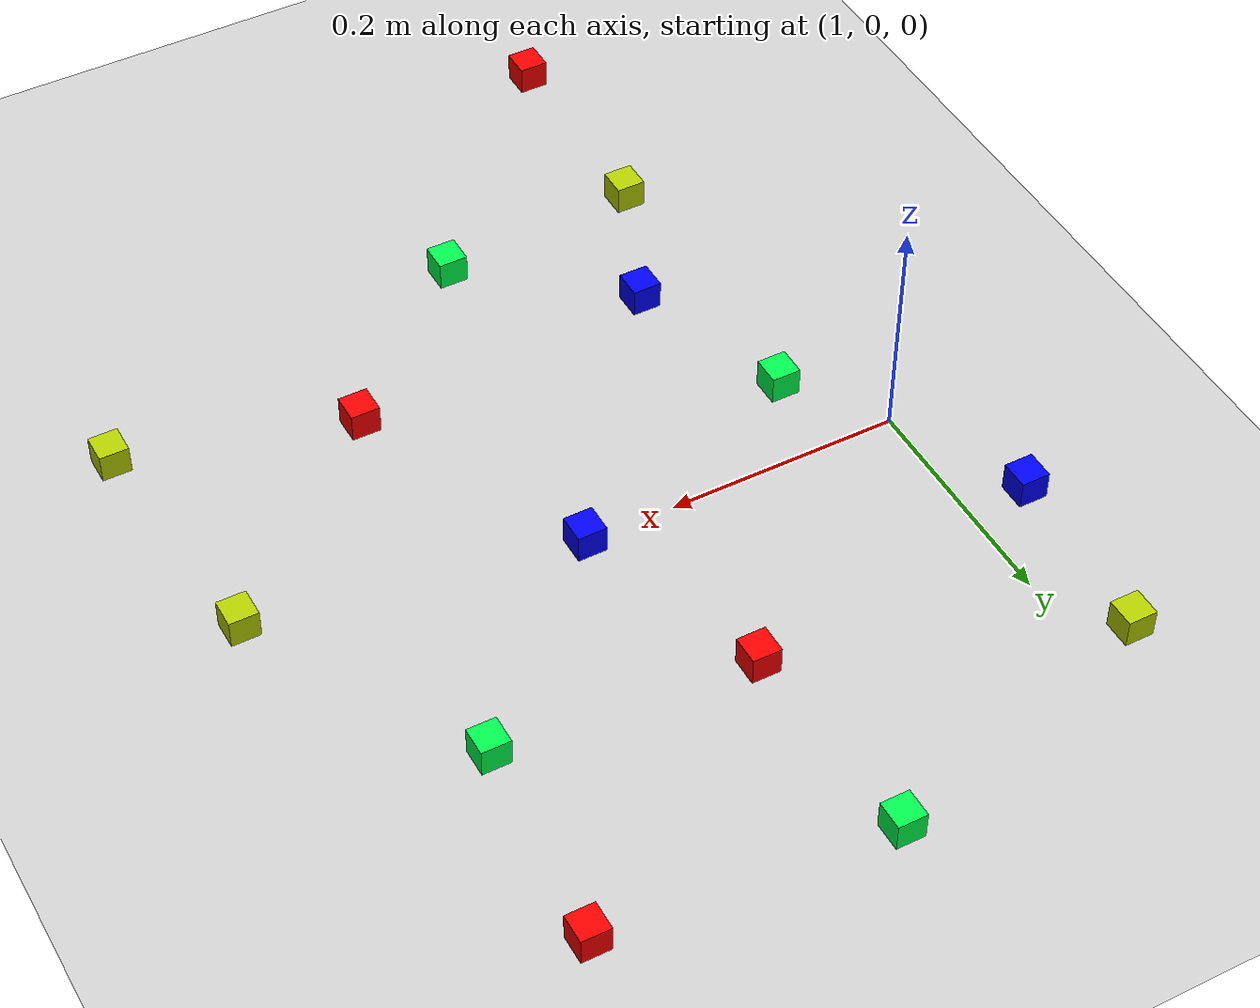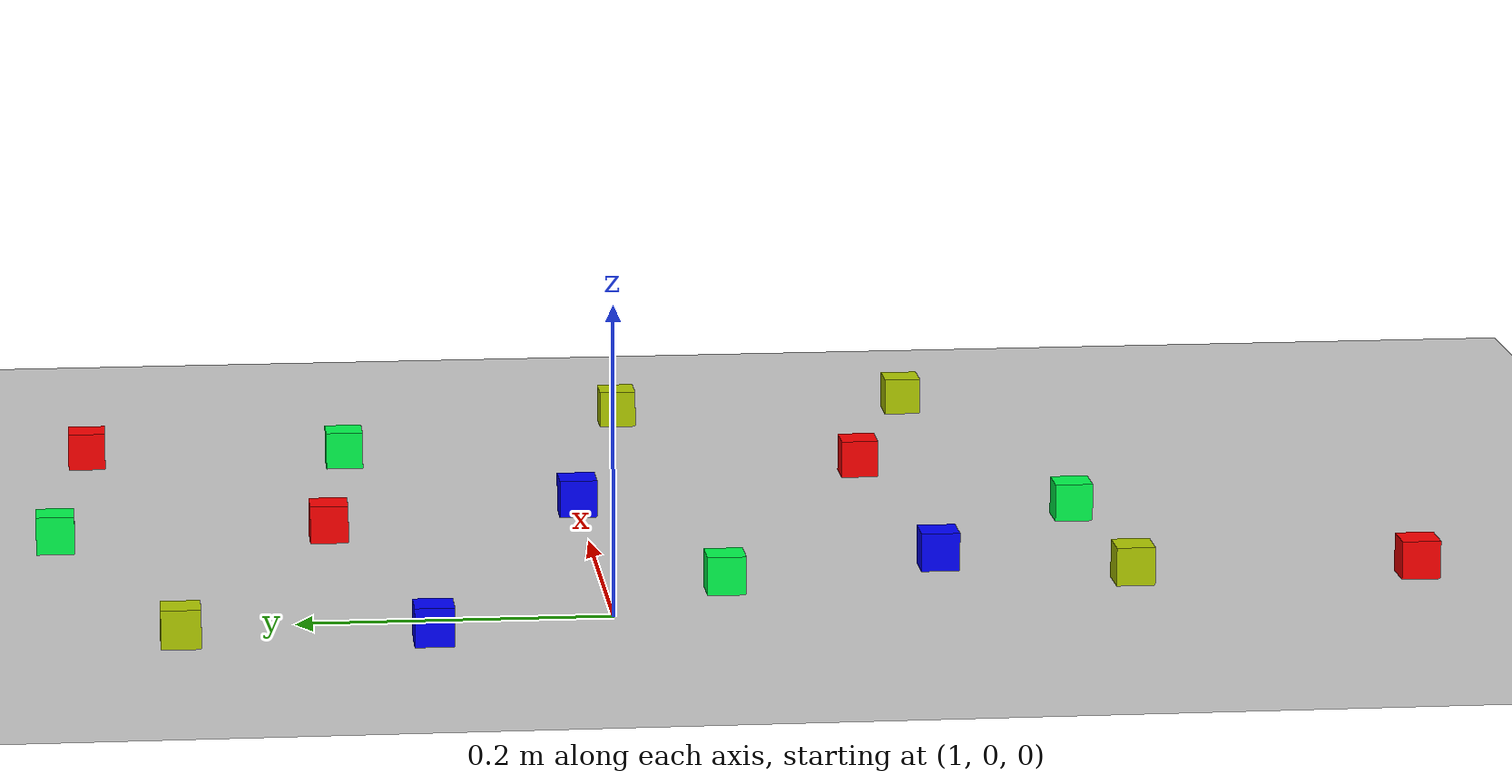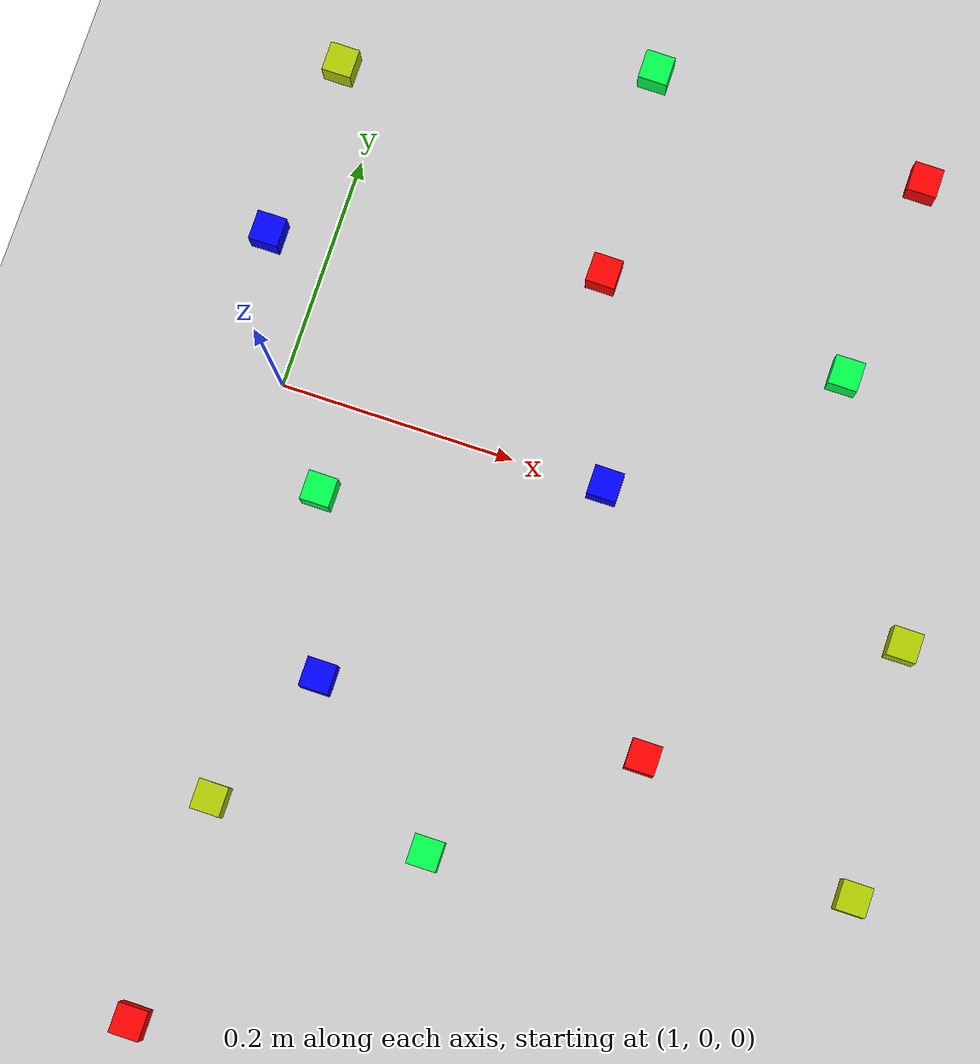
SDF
<sdf version="1.7">
 <world name="default">
  <light name="sun" type="directional">
   <pose>0 0 10 0 -0 0</pose>
   <diffuse>0.8 0.8 0.8 1</diffuse>
   <specular>0.2 0.2 0.2 1</specular>
   <attenuation>
    <range>1000</range>
    <constant>0.9</constant>
    <linear>0.01</linear>
    <quadratic>0.001</quadratic>
   </attenuation>
   <direction>-0.5 0.1 -0.9</direction>
   <spot><inner_angle>0</inner_angle><outer_angle>0</outer_angle><falloff>0</falloff></spot>
  </light>
  <model name="ground_plane">
   <static>1</static>
   <link name="link">
    <collision name="collision">
     <geometry><plane><normal>0 0 1</normal><size>100 100</size></plane></geometry>
     <surface>
      <contact><collide_bitmask>65535</collide_bitmask></contact>
      <friction><ode><mu>100</mu><mu2>50</mu2></ode></friction>
     </surface>
    </collision>
    <visual name="visual">
     <cast_shadows>0</cast_shadows>
     <geometry><plane><normal>0 0 1</normal><size>100 100</size></plane></geometry>
     <material>
      <script><uri>file://media/materials/scripts/gazebo.material</uri><name>Gazebo/Grey</name></script>
     </material>
    </visual>
   </link>
  </model>
  <gravity>0 0 -9.8</gravity>
  <magnetic_field>6e-06 2.3e-05 -4.2e-05</magnetic_field>
  <atmosphere type="adiabatic"/>
  <physics type="ode">
   <max_step_size>0.001</max_step_size>
   <real_time_factor>1</real_time_factor>
   <real_time_update_rate>1000</real_time_update_rate>
  </physics>
  <scene><ambient>0.4 0.4 0.4 1</ambient><background>0.7 0.7 0.7 1</background><shadows>1</shadows></scene>
  <spherical_coordinates>
   <surface_model>EARTH_WGS84</surface_model>
   <latitude_deg>0</latitude_deg>
   <longitude_deg>0</longitude_deg>
   <elevation>0</elevation>
   <heading_deg>0</heading_deg>
  </spherical_coordinates>
  <model name="red_unit_box">
   <link name="link">
    <inertial>
     <mass>1</mass>
     <inertia>
      <ixx>0.166667</ixx>
      <ixy>0</ixy>
      <ixz>0</ixz>
      <iyy>0.166667</iyy>
      <iyz>0</iyz>
      <izz>0.166667</izz>
     </inertia>
    </inertial>
    <visual name="visual">
     <geometry><box><size>0.025 0.025 0.025</size></box></geometry>
     <material>
      <script><name>Gazebo/Grey</name><uri>file://media/materials/scripts/gazebo.material</uri></script>
      <shader type="pixel"><normal_map>__default__</normal_map></shader>
      <ambient>0.7 0 0 1</ambient>
      <diffuse>1 0 0 1</diffuse>
      <specular>0.01 0 0 1</specular>
      <emissive>0 0 0 1</emissive>
     </material>
    </visual>
    <collision name="collision">
     <geometry><box><size>0.025 0.025 0.025</size></box></geometry>
     <surface>
      <friction>
       <ode><mu>1</mu><mu2>1</mu2><fdir1>0 0 0</fdir1><slip1>0</slip1><slip2>0</slip2></ode>
       <torsional>
        <coefficient>1</coefficient>
        <patch_radius>0</patch_radius>
        <surface_radius>0</surface_radius>
        <use_patch_radius>1</use_patch_radius>
        <ode><slip>0</slip></ode>
       </torsional>
      </friction>
      <bounce><restitution_coefficient>0</restitution_coefficient><threshold>1e+06</threshold></bounce>
      <contact>
       <collide_without_contact>0</collide_without_contact>
       <collide_without_contact_bitmask>1</collide_without_contact_bitmask>
       <collide_bitmask>1</collide_bitmask>
       <ode>
        <soft_cfm>0</soft_cfm>
        <soft_erp>0.2</soft_erp>
        <kp>1e+13</kp>
        <kd>1</kd>
        <max_vel>0.01</max_vel>
        <min_depth>0</min_depth>
       </ode>
       <bullet>
        <split_impulse>1</split_impulse>
        <split_impulse_penetration_threshold>-0.01</split_impulse_penetration_threshold>
        <soft_cfm>0</soft_cfm>
        <soft_erp>0.2</soft_erp>
        <kp>1e+13</kp>
        <kd>1</kd>
       </bullet>
      </contact>
     </surface>
    </collision>
   </link>
   <static>0</static>
   <pose>1.05719 -0.524894 0.0125 -1e-06 4e-06 0</pose>
  </model>
  <model name="green_unit_box">
   <link name="link">
    <inertial>
     <mass>1</mass>
     <inertia>
      <ixx>0.166667</ixx>
      <ixy>0</ixy>
      <ixz>0</ixz>
      <iyy>0.166667</iyy>
      <iyz>0</iyz>
      <izz>0.166667</izz>
     </inertia>
    </inertial>
    <visual name="visual">
     <geometry><box><size>0.025 0.025 0.025</size></box></geometry>
     <material>
      <script><name>Gazebo/Grey</name><uri>file://media/materials/scripts/gazebo.material</uri></script>
      <shader type="pixel"><normal_map>__default__</normal_map></shader>
      <ambient>0 1 0.3 1</ambient>
      <diffuse>0 1 0.3 1</diffuse>
      <specular>0.01 0 0 1</specular>
      <emissive>0 0 0 1</emissive>
     </material>
    </visual>
    <collision name="collision">
     <geometry><box><size>0.025 0.025 0.025</size></box></geometry>
     <surface>
      <friction>
       <ode><mu>1</mu><mu2>1</mu2><fdir1>0 0 0</fdir1><slip1>0</slip1><slip2>0</slip2></ode>
       <torsional>
        <coefficient>1</coefficient>
        <patch_radius>0</patch_radius>
        <surface_radius>0</surface_radius>
        <use_patch_radius>1</use_patch_radius>
        <ode><slip>0</slip></ode>
       </torsional>
      </friction>
      <bounce><restitution_coefficient>0</restitution_coefficient><threshold>1e+06</threshold></bounce>
      <contact>
       <collide_without_contact>0</collide_without_contact>
       <collide_without_contact_bitmask>1</collide_without_contact_bitmask>
       <collide_bitmask>1</collide_bitmask>
       <ode>
        <soft_cfm>0</soft_cfm>
        <soft_erp>0.2</soft_erp>
        <kp>1e+13</kp>
        <kd>1</kd>
        <max_vel>0.01</max_vel>
        <min_depth>0</min_depth>
       </ode>
       <bullet>
        <split_impulse>1</split_impulse>
        <split_impulse_penetration_threshold>-0.01</split_impulse_penetration_threshold>
        <soft_cfm>0</soft_cfm>
        <soft_erp>0.2</soft_erp>
        <kp>1e+13</kp>
        <kd>1</kd>
       </bullet>
      </contact>
     </surface>
    </collision>
   </link>
   <static>0</static>
   <pose>1.23653 -0.326369 0.0125 1e-06 2e-06 -1e-06</pose>
  </model>
  <model name="yellow_unit_box">
   <link name="link">
    <inertial>
     <mass>1</mass>
     <inertia>
      <ixx>0.166667</ixx>
      <ixy>0</ixy>
      <ixz>0</ixz>
      <iyy>0.166667</iyy>
      <iyz>0</iyz>
      <izz>0.166667</izz>
     </inertia>
    </inertial>
    <visual name="visual">
     <geometry><box><size>0.025 0.025 0.025</size></box></geometry>
     <material>
      <script><name>Gazebo/Grey</name><uri>file://media/materials/scripts/gazebo.material</uri></script>
      <shader type="pixel"><normal_map>__default__</normal_map></shader>
      <ambient>0.8 0.8 0 1</ambient>
      <diffuse>0.7 0.8 0 1</diffuse>
      <specular>0.01 0 0 1</specular>
      <emissive>0 0 0 1</emissive>
     </material>
    </visual>
    <collision name="collision">
     <geometry><box><size>0.025 0.025 0.025</size></box></geometry>
     <surface>
      <friction>
       <ode><mu>1</mu><mu2>1</mu2><fdir1>0 0 0</fdir1><slip1>0</slip1><slip2>0</slip2></ode>
       <torsional>
        <coefficient>1</coefficient>
        <patch_radius>0</patch_radius>
        <surface_radius>0</surface_radius>
        <use_patch_radius>1</use_patch_radius>
        <ode><slip>0</slip></ode>
       </torsional>
      </friction>
      <bounce><restitution_coefficient>0</restitution_coefficient><threshold>1e+06</threshold></bounce>
      <contact>
       <collide_without_contact>0</collide_without_contact>
       <collide_without_contact_bitmask>1</collide_without_contact_bitmask>
       <collide_bitmask>1</collide_bitmask>
       <ode>
        <soft_cfm>0</soft_cfm>
        <soft_erp>0.2</soft_erp>
        <kp>1e+13</kp>
        <kd>1</kd>
        <max_vel>0.01</max_vel>
        <min_depth>0</min_depth>
       </ode>
       <bullet>
        <split_impulse>1</split_impulse>
        <split_impulse_penetration_threshold>-0.01</split_impulse_penetration_threshold>
        <soft_cfm>0</soft_cfm>
        <soft_erp>0.2</soft_erp>
        <kp>1e+13</kp>
        <kd>1</kd>
       </bullet>
      </contact>
     </surface>
    </collision>
   </link>
   <static>0</static>
   <pose>1.05882 -0.339484 0.0125 -1e-06 -1.4e-05 0</pose>
  </model>
  <model name="blue_unit_box">
   <link name="link">
    <inertial>
     <mass>1</mass>
     <inertia>
      <ixx>0.166667</ixx>
      <ixy>0</ixy>
      <ixz>0</ixz>
      <iyy>0.166667</iyy>
      <iyz>0</iyz>
      <izz>0.166667</izz>
     </inertia>
    </inertial>
    <visual name="visual">
     <geometry><box><size>0.025 0.025 0.025</size></box></geometry>
     <material>
      <script><name>Gazebo/Grey</name><uri>file://media/materials/scripts/gazebo.material</uri></script>
      <shader type="pixel"><normal_map>__default__</normal_map></shader>
      <ambient>0 0 1 1</ambient>
      <diffuse>0 0 1 1</diffuse>
      <specular>0.01 0 0 1</specular>
      <emissive>0 0 0 1</emissive>
     </material>
    </visual>
    <collision name="collision">
     <geometry><box><size>0.025 0.025 0.025</size></box></geometry>
     <surface>
      <friction>
       <ode><mu>1</mu><mu2>1</mu2><fdir1>0 0 0</fdir1><slip1>0</slip1><slip2>0</slip2></ode>
       <torsional>
        <coefficient>1</coefficient>
        <patch_radius>0</patch_radius>
        <surface_radius>0</surface_radius>
        <use_patch_radius>1</use_patch_radius>
        <ode><slip>0</slip></ode>
       </torsional>
      </friction>
      <bounce><restitution_coefficient>0</restitution_coefficient><threshold>1e+06</threshold></bounce>
      <contact>
       <collide_without_contact>0</collide_without_contact>
       <collide_without_contact_bitmask>1</collide_without_contact_bitmask>
       <collide_bitmask>1</collide_bitmask>
       <ode>
        <soft_cfm>0</soft_cfm>
        <soft_erp>0.2</soft_erp>
        <kp>1e+13</kp>
        <kd>1</kd>
        <max_vel>0.01</max_vel>
        <min_depth>0</min_depth>
       </ode>
       <bullet>
        <split_impulse>1</split_impulse>
        <split_impulse_penetration_threshold>-0.01</split_impulse_penetration_threshold>
        <soft_cfm>0</soft_cfm>
        <soft_erp>0.2</soft_erp>
        <kp>1e+13</kp>
        <kd>1</kd>
       </bullet>
      </contact>
     </surface>
    </collision>
   </link>
   <static>0</static>
   <pose>1.10903 -0.219916 0.012502 4.5e-05 -0.000116 -1e-06</pose>
  </model>
  <model name="red_unit_box_0">
   <link name="link">
    <inertial>
     <mass>1</mass>
     <inertia>
      <ixx>0.166667</ixx>
      <ixy>0</ixy>
      <ixz>0</ixz>
      <iyy>0.166667</iyy>
      <iyz>0</iyz>
      <izz>0.166667</izz>
     </inertia>
    </inertial>
    <visual name="visual">
     <geometry><box><size>0.025 0.025 0.025</size></box></geometry>
     <material>
      <script><name>Gazebo/Grey</name><uri>file://media/materials/scripts/gazebo.material</uri></script>
      <shader type="pixel"><normal_map>__default__</normal_map></shader>
      <ambient>0.7 0 0 1</ambient>
      <diffuse>1 0 0 1</diffuse>
      <specular>0.01 0 0 1</specular>
      <emissive>0 0 0 1</emissive>
     </material>
    </visual>
    <collision name="collision">
     <geometry><box><size>0.025 0.025 0.025</size></box></geometry>
     <surface>
      <friction>
       <ode><mu>1</mu><mu2>1</mu2><fdir1>0 0 0</fdir1><slip1>0</slip1><slip2>0</slip2></ode>
       <torsional>
        <coefficient>1</coefficient>
        <patch_radius>0</patch_radius>
        <surface_radius>0</surface_radius>
        <use_patch_radius>1</use_patch_radius>
        <ode><slip>0</slip></ode>
       </torsional>
      </friction>
      <bounce><restitution_coefficient>0</restitution_coefficient><threshold>1e+06</threshold></bounce>
      <contact>
       <collide_without_contact>0</collide_without_contact>
       <collide_without_contact_bitmask>1</collide_without_contact_bitmask>
       <collide_bitmask>1</collide_bitmask>
       <ode>
        <soft_cfm>0</soft_cfm>
        <soft_erp>0.2</soft_erp>
        <kp>1e+13</kp>
        <kd>1</kd>
        <max_vel>0.01</max_vel>
        <min_depth>0</min_depth>
       </ode>
       <bullet>
        <split_impulse>1</split_impulse>
        <split_impulse_penetration_threshold>-0.01</split_impulse_penetration_threshold>
        <soft_cfm>0</soft_cfm>
        <soft_erp>0.2</soft_erp>
        <kp>1e+13</kp>
        <kd>1</kd>
       </bullet>
      </contact>
     </surface>
    </collision>
   </link>
   <static>0</static>
   <pose>1.37766 -0.199545 0.012501 2e-06 3.8e-05 -2e-06</pose>
  </model>
  <model name="green_unit_box_0">
   <link name="link">
    <inertial>
     <mass>1</mass>
     <inertia>
      <ixx>0.166667</ixx>
      <ixy>0</ixy>
      <ixz>0</ixz>
      <iyy>0.166667</iyy>
      <iyz>0</iyz>
      <izz>0.166667</izz>
     </inertia>
    </inertial>
    <visual name="visual">
     <geometry><box><size>0.025 0.025 0.025</size></box></geometry>
     <material>
      <script><name>Gazebo/Grey</name><uri>file://media/materials/scripts/gazebo.material</uri></script>
      <shader type="pixel"><normal_map>__default__</normal_map></shader>
      <ambient>0 1 0.3 1</ambient>
      <diffuse>0 1 0.3 1</diffuse>
      <specular>0.01 0 0 1</specular>
      <emissive>0 0 0 1</emissive>
     </material>
    </visual>
    <collision name="collision">
     <geometry><box><size>0.025 0.025 0.025</size></box></geometry>
     <surface>
      <friction>
       <ode><mu>1</mu><mu2>1</mu2><fdir1>0 0 0</fdir1><slip1>0</slip1><slip2>0</slip2></ode>
       <torsional>
        <coefficient>1</coefficient>
        <patch_radius>0</patch_radius>
        <surface_radius>0</surface_radius>
        <use_patch_radius>1</use_patch_radius>
        <ode><slip>0</slip></ode>
       </torsional>
      </friction>
      <bounce><restitution_coefficient>0</restitution_coefficient><threshold>1e+06</threshold></bounce>
      <contact>
       <collide_without_contact>0</collide_without_contact>
       <collide_without_contact_bitmask>1</collide_without_contact_bitmask>
       <collide_bitmask>1</collide_bitmask>
       <ode>
        <soft_cfm>0</soft_cfm>
        <soft_erp>0.2</soft_erp>
        <kp>1e+13</kp>
        <kd>1</kd>
        <max_vel>0.01</max_vel>
        <min_depth>0</min_depth>
       </ode>
       <bullet>
        <split_impulse>1</split_impulse>
        <split_impulse_penetration_threshold>-0.01</split_impulse_penetration_threshold>
        <soft_cfm>0</soft_cfm>
        <soft_erp>0.2</soft_erp>
        <kp>1e+13</kp>
        <kd>1</kd>
       </bullet>
      </contact>
     </surface>
    </collision>
   </link>
   <static>0</static>
   <pose>1.05986 -0.076111 0.0125 -1.9e-05 -4e-06 -1e-06</pose>
  </model>
  <model name="blue_unit_box_0">
   <link name="link">
    <inertial>
     <mass>1</mass>
     <inertia>
      <ixx>0.166667</ixx>
      <ixy>0</ixy>
      <ixz>0</ixz>
      <iyy>0.166667</iyy>
      <iyz>0</iyz>
      <izz>0.166667</izz>
     </inertia>
    </inertial>
    <visual name="visual">
     <geometry><box><size>0.025 0.025 0.025</size></box></geometry>
     <material>
      <script><name>Gazebo/Grey</name><uri>file://media/materials/scripts/gazebo.material</uri></script>
      <shader type="pixel"><normal_map>__default__</normal_map></shader>
      <ambient>0 0 1 1</ambient>
      <diffuse>0 0 1 1</diffuse>
      <specular>0.01 0 0 1</specular>
      <emissive>0 0 0 1</emissive>
     </material>
    </visual>
    <collision name="collision">
     <geometry><box><size>0.025 0.025 0.025</size></box></geometry>
     <surface>
      <friction>
       <ode><mu>1</mu><mu2>1</mu2><fdir1>0 0 0</fdir1><slip1>0</slip1><slip2>0</slip2></ode>
       <torsional>
        <coefficient>1</coefficient>
        <patch_radius>0</patch_radius>
        <surface_radius>0</surface_radius>
        <use_patch_radius>1</use_patch_radius>
        <ode><slip>0</slip></ode>
       </torsional>
      </friction>
      <bounce><restitution_coefficient>0</restitution_coefficient><threshold>1e+06</threshold></bounce>
      <contact>
       <collide_without_contact>0</collide_without_contact>
       <collide_without_contact_bitmask>1</collide_without_contact_bitmask>
       <collide_bitmask>1</collide_bitmask>
       <ode>
        <soft_cfm>0</soft_cfm>
        <soft_erp>0.2</soft_erp>
        <kp>1e+13</kp>
        <kd>1</kd>
        <max_vel>0.01</max_vel>
        <min_depth>0</min_depth>
       </ode>
       <bullet>
        <split_impulse>1</split_impulse>
        <split_impulse_penetration_threshold>-0.01</split_impulse_penetration_threshold>
        <soft_cfm>0</soft_cfm>
        <soft_erp>0.2</soft_erp>
        <kp>1e+13</kp>
        <kd>1</kd>
       </bullet>
      </contact>
     </surface>
    </collision>
   </link>
   <static>0</static>
   <pose>1.27971 0.001547 0.0125 2.8e-05 -2e-06 1e-06</pose>
  </model>
  <model name="yellow_unit_box_0">
   <link name="link">
    <inertial>
     <mass>1</mass>
     <inertia>
      <ixx>0.166667</ixx>
      <ixy>0</ixy>
      <ixz>0</ixz>
      <iyy>0.166667</iyy>
      <iyz>0</iyz>
      <izz>0.166667</izz>
     </inertia>
    </inertial>
    <visual name="visual">
     <geometry><box><size>0.025 0.025 0.025</size></box></geometry>
     <material>
      <script><name>Gazebo/Grey</name><uri>file://media/materials/scripts/gazebo.material</uri></script>
      <shader type="pixel"><normal_map>__default__</normal_map></shader>
      <ambient>0.8 0.8 0 1</ambient>
      <diffuse>0.7 0.8 0 1</diffuse>
      <specular>0.01 0 0 1</specular>
      <emissive>0 0 0 1</emissive>
     </material>
    </visual>
    <collision name="collision">
     <geometry><box><size>0.025 0.025 0.025</size></box></geometry>
     <surface>
      <friction>
       <ode><mu>1</mu><mu2>1</mu2><fdir1>0 0 0</fdir1><slip1>0</slip1><slip2>0</slip2></ode>
       <torsional>
        <coefficient>1</coefficient>
        <patch_radius>0</patch_radius>
        <surface_radius>0</surface_radius>
        <use_patch_radius>1</use_patch_radius>
        <ode><slip>0</slip></ode>
       </torsional>
      </friction>
      <bounce><restitution_coefficient>0</restitution_coefficient><threshold>1e+06</threshold></bounce>
      <contact>
       <collide_without_contact>0</collide_without_contact>
       <collide_without_contact_bitmask>1</collide_without_contact_bitmask>
       <collide_bitmask>1</collide_bitmask>
       <ode>
        <soft_cfm>0</soft_cfm>
        <soft_erp>0.2</soft_erp>
        <kp>1e+13</kp>
        <kd>1</kd>
        <max_vel>0.01</max_vel>
        <min_depth>0</min_depth>
       </ode>
       <bullet>
        <split_impulse>1</split_impulse>
        <split_impulse_penetration_threshold>-0.01</split_impulse_penetration_threshold>
        <soft_cfm>0</soft_cfm>
        <soft_erp>0.2</soft_erp>
        <kp>1e+13</kp>
        <kd>1</kd>
       </bullet>
      </contact>
     </surface>
    </collision>
   </link>
   <static>0</static>
   <pose>1.54959 -0.047253 0.0125 2e-06 -8e-06 -3e-06</pose>
  </model>
  <model name="red_unit_box_1">
   <link name="link">
    <inertial>
     <mass>1</mass>
     <inertia>
      <ixx>0.166667</ixx>
      <ixy>0</ixy>
      <ixz>0</ixz>
      <iyy>0.166667</iyy>
      <iyz>0</iyz>
      <izz>0.166667</izz>
     </inertia>
    </inertial>
    <visual name="visual">
     <geometry><box><size>0.025 0.025 0.025</size></box></geometry>
     <material>
      <script><name>Gazebo/Grey</name><uri>file://media/materials/scripts/gazebo.material</uri></script>
      <shader type="pixel"><normal_map>__default__</normal_map></shader>
      <ambient>0.7 0 0 1</ambient>
      <diffuse>1 0 0 1</diffuse>
      <specular>0.01 0 0 1</specular>
      <emissive>0 0 0 1</emissive>
     </material>
    </visual>
    <collision name="collision">
     <geometry><box><size>0.025 0.025 0.025</size></box></geometry>
     <surface>
      <friction>
       <ode><mu>1</mu><mu2>1</mu2><fdir1>0 0 0</fdir1><slip1>0</slip1><slip2>0</slip2></ode>
       <torsional>
        <coefficient>1</coefficient>
        <patch_radius>0</patch_radius>
        <surface_radius>0</surface_radius>
        <use_patch_radius>1</use_patch_radius>
        <ode><slip>0</slip></ode>
       </torsional>
      </friction>
      <bounce><restitution_coefficient>0</restitution_coefficient><threshold>1e+06</threshold></bounce>
      <contact>
       <collide_without_contact>0</collide_without_contact>
       <collide_without_contact_bitmask>1</collide_without_contact_bitmask>
       <collide_bitmask>1</collide_bitmask>
       <ode>
        <soft_cfm>0</soft_cfm>
        <soft_erp>0.2</soft_erp>
        <kp>1e+13</kp>
        <kd>1</kd>
        <max_vel>0.01</max_vel>
        <min_depth>0</min_depth>
       </ode>
       <bullet>
        <split_impulse>1</split_impulse>
        <split_impulse_penetration_threshold>-0.01</split_impulse_penetration_threshold>
        <soft_cfm>0</soft_cfm>
        <soft_erp>0.2</soft_erp>
        <kp>1e+13</kp>
        <kd>1</kd>
       </bullet>
      </contact>
     </surface>
    </collision>
   </link>
   <static>0</static>
   <pose>1.22347 0.170256 0.012501 -1e-06 0.000106 -1e-06</pose>
  </model>
  <model name="green_unit_box_1">
   <link name="link">
    <inertial>
     <mass>1</mass>
     <inertia>
      <ixx>0.166667</ixx>
      <ixy>0</ixy>
      <ixz>0</ixz>
      <iyy>0.166667</iyy>
      <iyz>0</iyz>
      <izz>0.166667</izz>
     </inertia>
    </inertial>
    <visual name="visual">
     <geometry><box><size>0.025 0.025 0.025</size></box></geometry>
     <material>
      <script><name>Gazebo/Grey</name><uri>file://media/materials/scripts/gazebo.material</uri></script>
      <shader type="pixel"><normal_map>__default__</normal_map></shader>
      <ambient>0 1 0.3 1</ambient>
      <diffuse>0 1 0.3 1</diffuse>
      <specular>0.01 0 0 1</specular>
      <emissive>0 0 0 1</emissive>
     </material>
    </visual>
    <collision name="collision">
     <geometry><box><size>0.025 0.025 0.025</size></box></geometry>
     <surface>
      <friction>
       <ode><mu>1</mu><mu2>1</mu2><fdir1>0 0 0</fdir1><slip1>0</slip1><slip2>0</slip2></ode>
       <torsional>
        <coefficient>1</coefficient>
        <patch_radius>0</patch_radius>
        <surface_radius>0</surface_radius>
        <use_patch_radius>1</use_patch_radius>
        <ode><slip>0</slip></ode>
       </torsional>
      </friction>
      <bounce><restitution_coefficient>0</restitution_coefficient><threshold>1e+06</threshold></bounce>
      <contact>
       <collide_without_contact>0</collide_without_contact>
       <collide_without_contact_bitmask>1</collide_without_contact_bitmask>
       <collide_bitmask>1</collide_bitmask>
       <ode>
        <soft_cfm>0</soft_cfm>
        <soft_erp>0.2</soft_erp>
        <kp>1e+13</kp>
        <kd>1</kd>
        <max_vel>0.01</max_vel>
        <min_depth>0</min_depth>
       </ode>
       <bullet>
        <split_impulse>1</split_impulse>
        <split_impulse_penetration_threshold>-0.01</split_impulse_penetration_threshold>
        <soft_cfm>0</soft_cfm>
        <soft_erp>0.2</soft_erp>
        <kp>1e+13</kp>
        <kd>1</kd>
       </bullet>
      </contact>
     </surface>
    </collision>
   </link>
   <static>0</static>
   <pose>1.43866 0.150908 0.0125 -1.8e-05 2e-06 1e-06</pose>
  </model>
  <model name="yellow_unit_box_1">
   <link name="link">
    <inertial>
     <mass>1</mass>
     <inertia>
      <ixx>0.166667</ixx>
      <ixy>0</ixy>
      <ixz>0</ixz>
      <iyy>0.166667</iyy>
      <iyz>0</iyz>
      <izz>0.166667</izz>
     </inertia>
    </inertial>
    <visual name="visual">
     <geometry><box><size>0.025 0.025 0.025</size></box></geometry>
     <material>
      <script><name>Gazebo/Grey</name><uri>file://media/materials/scripts/gazebo.material</uri></script>
      <shader type="pixel"><normal_map>__default__</normal_map></shader>
      <ambient>0.8 0.8 0 1</ambient>
      <diffuse>0.7 0.8 0 1</diffuse>
      <specular>0.01 0 0 1</specular>
      <emissive>0 0 0 1</emissive>
     </material>
    </visual>
    <collision name="collision">
     <geometry><box><size>0.025 0.025 0.025</size></box></geometry>
     <surface>
      <friction>
       <ode><mu>1</mu><mu2>1</mu2><fdir1>0 0 0</fdir1><slip1>0</slip1><slip2>0</slip2></ode>
       <torsional>
        <coefficient>1</coefficient>
        <patch_radius>0</patch_radius>
        <surface_radius>0</surface_radius>
        <use_patch_radius>1</use_patch_radius>
        <ode><slip>0</slip></ode>
       </torsional>
      </friction>
      <bounce><restitution_coefficient>0</restitution_coefficient><threshold>1e+06</threshold></bounce>
      <contact>
       <collide_without_contact>0</collide_without_contact>
       <collide_without_contact_bitmask>1</collide_without_contact_bitmask>
       <collide_bitmask>1</collide_bitmask>
       <ode>
        <soft_cfm>0</soft_cfm>
        <soft_erp>0.2</soft_erp>
        <kp>1e+13</kp>
        <kd>1</kd>
        <max_vel>0.01</max_vel>
        <min_depth>0</min_depth>
       </ode>
       <bullet>
        <split_impulse>1</split_impulse>
        <split_impulse_penetration_threshold>-0.01</split_impulse_penetration_threshold>
        <soft_cfm>0</soft_cfm>
        <soft_erp>0.2</soft_erp>
        <kp>1e+13</kp>
        <kd>1</kd>
       </bullet>
      </contact>
     </surface>
    </collision>
   </link>
   <static>0</static>
   <pose>0.958059 0.272634 0.0125 2e-06 -6e-06 0</pose>
  </model>
  <model name="green_unit_box_2">
   <link name="link">
    <inertial>
     <mass>1</mass>
     <inertia>
      <ixx>0.166667</ixx>
      <ixy>0</ixy>
      <ixz>0</ixz>
      <iyy>0.166667</iyy>
      <iyz>0</iyz>
      <izz>0.166667</izz>
     </inertia>
    </inertial>
    <visual name="visual">
     <geometry><box><size>0.025 0.025 0.025</size></box></geometry>
     <material>
      <script><name>Gazebo/Grey</name><uri>file://media/materials/scripts/gazebo.material</uri></script>
      <shader type="pixel"><normal_map>__default__</normal_map></shader>
      <ambient>0 1 0.3 1</ambient>
      <diffuse>0 1 0.3 1</diffuse>
      <specular>0.01 0 0 1</specular>
      <emissive>0 0 0 1</emissive>
     </material>
    </visual>
    <collision name="collision">
     <geometry><box><size>0.025 0.025 0.025</size></box></geometry>
     <surface>
      <friction>
       <ode><mu>1</mu><mu2>1</mu2><fdir1>0 0 0</fdir1><slip1>0</slip1><slip2>0</slip2></ode>
       <torsional>
        <coefficient>1</coefficient>
        <patch_radius>0</patch_radius>
        <surface_radius>0</surface_radius>
        <use_patch_radius>1</use_patch_radius>
        <ode><slip>0</slip></ode>
       </torsional>
      </friction>
      <bounce><restitution_coefficient>0</restitution_coefficient><threshold>1e+06</threshold></bounce>
      <contact>
       <collide_without_contact>0</collide_without_contact>
       <collide_without_contact_bitmask>1</collide_without_contact_bitmask>
       <collide_bitmask>1</collide_bitmask>
       <ode>
        <soft_cfm>0</soft_cfm>
        <soft_erp>0.2</soft_erp>
        <kp>1e+13</kp>
        <kd>1</kd>
        <max_vel>0.01</max_vel>
        <min_depth>0</min_depth>
       </ode>
       <bullet>
        <split_impulse>1</split_impulse>
        <split_impulse_penetration_threshold>-0.01</split_impulse_penetration_threshold>
        <soft_cfm>0</soft_cfm>
        <soft_erp>0.2</soft_erp>
        <kp>1e+13</kp>
        <kd>1</kd>
       </bullet>
      </contact>
     </surface>
    </collision>
   </link>
   <static>0</static>
   <pose>1.21069 0.349567 0.0125 1.1e-05 4e-06 0</pose>
  </model>
  <model name="blue_unit_box_1">
   <link name="link">
    <inertial>
     <mass>1</mass>
     <inertia>
      <ixx>0.166667</ixx>
      <ixy>0</ixy>
      <ixz>0</ixz>
      <iyy>0.166667</iyy>
      <iyz>0</iyz>
      <izz>0.166667</izz>
     </inertia>
    </inertial>
    <visual name="visual">
     <geometry><box><size>0.025 0.025 0.025</size></box></geometry>
     <material>
      <script><name>Gazebo/Grey</name><uri>file://media/materials/scripts/gazebo.material</uri></script>
      <shader type="pixel"><normal_map>__default__</normal_map></shader>
      <ambient>0 0 1 1</ambient>
      <diffuse>0 0 1 1</diffuse>
      <specular>0.01 0 0 1</specular>
      <emissive>0 0 0 1</emissive>
     </material>
    </visual>
    <collision name="collision">
     <geometry><box><size>0.025 0.025 0.025</size></box></geometry>
     <surface>
      <friction>
       <ode><mu>1</mu><mu2>1</mu2><fdir1>0 0 0</fdir1><slip1>0</slip1><slip2>0</slip2></ode>
       <torsional>
        <coefficient>1</coefficient>
        <patch_radius>0</patch_radius>
        <surface_radius>0</surface_radius>
        <use_patch_radius>1</use_patch_radius>
        <ode><slip>0</slip></ode>
       </torsional>
      </friction>
      <bounce><restitution_coefficient>0</restitution_coefficient><threshold>1e+06</threshold></bounce>
      <contact>
       <collide_without_contact>0</collide_without_contact>
       <collide_without_contact_bitmask>1</collide_without_contact_bitmask>
       <collide_bitmask>1</collide_bitmask>
       <ode>
        <soft_cfm>0</soft_cfm>
        <soft_erp>0.2</soft_erp>
        <kp>1e+13</kp>
        <kd>1</kd>
        <max_vel>0.01</max_vel>
        <min_depth>0</min_depth>
       </ode>
       <bullet>
        <split_impulse>1</split_impulse>
        <split_impulse_penetration_threshold>-0.01</split_impulse_penetration_threshold>
        <soft_cfm>0</soft_cfm>
        <soft_erp>0.2</soft_erp>
        <kp>1e+13</kp>
        <kd>1</kd>
       </bullet>
      </contact>
     </surface>
    </collision>
   </link>
   <static>0</static>
   <pose>0.94823 0.116417 0.012501 -3.9e-05 2.2e-05 -1e-06</pose>
  </model>
  <model name="yellow_unit_box_2">
   <link name="link">
    <inertial>
     <mass>1</mass>
     <inertia>
      <ixx>0.166667</ixx>
      <ixy>0</ixy>
      <ixz>0</ixz>
      <iyy>0.166667</iyy>
      <iyz>0</iyz>
      <izz>0.166667</izz>
     </inertia>
    </inertial>
    <visual name="visual">
     <geometry><box><size>0.025 0.025 0.025</size></box></geometry>
     <material>
      <script><name>Gazebo/Grey</name><uri>file://media/materials/scripts/gazebo.material</uri></script>
      <shader type="pixel"><normal_map>__default__</normal_map></shader>
      <ambient>0.8 0.8 0 1</ambient>
      <diffuse>0.7 0.8 0 1</diffuse>
      <specular>0.01 0 0 1</specular>
      <emissive>0 0 0 1</emissive>
     </material>
    </visual>
    <collision name="collision">
     <geometry><box><size>0.025 0.025 0.025</size></box></geometry>
     <surface>
      <friction>
       <ode><mu>1</mu><mu2>1</mu2><fdir1>0 0 0</fdir1><slip1>0</slip1><slip2>0</slip2></ode>
       <torsional>
        <coefficient>1</coefficient>
        <patch_radius>0</patch_radius>
        <surface_radius>0</surface_radius>
        <use_patch_radius>1</use_patch_radius>
        <ode><slip>0</slip></ode>
       </torsional>
      </friction>
      <bounce><restitution_coefficient>0</restitution_coefficient><threshold>1e+06</threshold></bounce>
      <contact>
       <collide_without_contact>0</collide_without_contact>
       <collide_without_contact_bitmask>1</collide_without_contact_bitmask>
       <collide_bitmask>1</collide_bitmask>
       <ode>
        <soft_cfm>0</soft_cfm>
        <soft_erp>0.2</soft_erp>
        <kp>1e+13</kp>
        <kd>1</kd>
        <max_vel>0.01</max_vel>
        <min_depth>0</min_depth>
       </ode>
       <bullet>
        <split_impulse>1</split_impulse>
        <split_impulse_penetration_threshold>-0.01</split_impulse_penetration_threshold>
        <soft_cfm>0</soft_cfm>
        <soft_erp>0.2</soft_erp>
        <kp>1e+13</kp>
        <kd>1</kd>
       </bullet>
      </contact>
     </surface>
    </collision>
   </link>
   <static>0</static>
   <pose>1.57088 -0.253306 0.012503 0.000121 0.000126 -1e-06</pose>
  </model>
  <model name="red_unit_box_2">
   <link name="link">
    <inertial>
     <mass>1</mass>
     <inertia>
      <ixx>0.166667</ixx>
      <ixy>0</ixy>
      <ixz>0</ixz>
      <iyy>0.166667</iyy>
      <iyz>0</iyz>
      <izz>0.166667</izz>
     </inertia>
    </inertial>
    <visual name="visual">
     <geometry><box><size>0.025 0.025 0.025</size></box></geometry>
     <material>
      <script><name>Gazebo/Grey</name><uri>file://media/materials/scripts/gazebo.material</uri></script>
      <shader type="pixel"><normal_map>__default__</normal_map></shader>
      <ambient>0.7 0 0 1</ambient>
      <diffuse>1 0 0 1</diffuse>
      <specular>0.01 0 0 1</specular>
      <emissive>0 0 0 1</emissive>
     </material>
    </visual>
    <collision name="collision">
     <geometry><box><size>0.025 0.025 0.025</size></box></geometry>
     <surface>
      <friction>
       <ode><mu>1</mu><mu2>1</mu2><fdir1>0 0 0</fdir1><slip1>0</slip1><slip2>0</slip2></ode>
       <torsional>
        <coefficient>1</coefficient>
        <patch_radius>0</patch_radius>
        <surface_radius>0</surface_radius>
        <use_patch_radius>1</use_patch_radius>
        <ode><slip>0</slip></ode>
       </torsional>
      </friction>
      <bounce><restitution_coefficient>0</restitution_coefficient><threshold>1e+06</threshold></bounce>
      <contact>
       <collide_without_contact>0</collide_without_contact>
       <collide_without_contact_bitmask>1</collide_without_contact_bitmask>
       <collide_bitmask>1</collide_bitmask>
       <ode>
        <soft_cfm>0</soft_cfm>
        <soft_erp>0.2</soft_erp>
        <kp>1e+13</kp>
        <kd>1</kd>
        <max_vel>0.01</max_vel>
        <min_depth>0</min_depth>
       </ode>
       <bullet>
        <split_impulse>1</split_impulse>
        <split_impulse_penetration_threshold>-0.01</split_impulse_penetration_threshold>
        <soft_cfm>0</soft_cfm>
        <soft_erp>0.2</soft_erp>
        <kp>1e+13</kp>
        <kd>1</kd>
       </bullet>
      </contact>
     </surface>
    </collision>
   </link>
   <static>0</static>
   <pose>1.45205 0.327789 0.012512 -0.000305 0.000687 -1e-06</pose>
  </model>
 </world>
</sdf>
